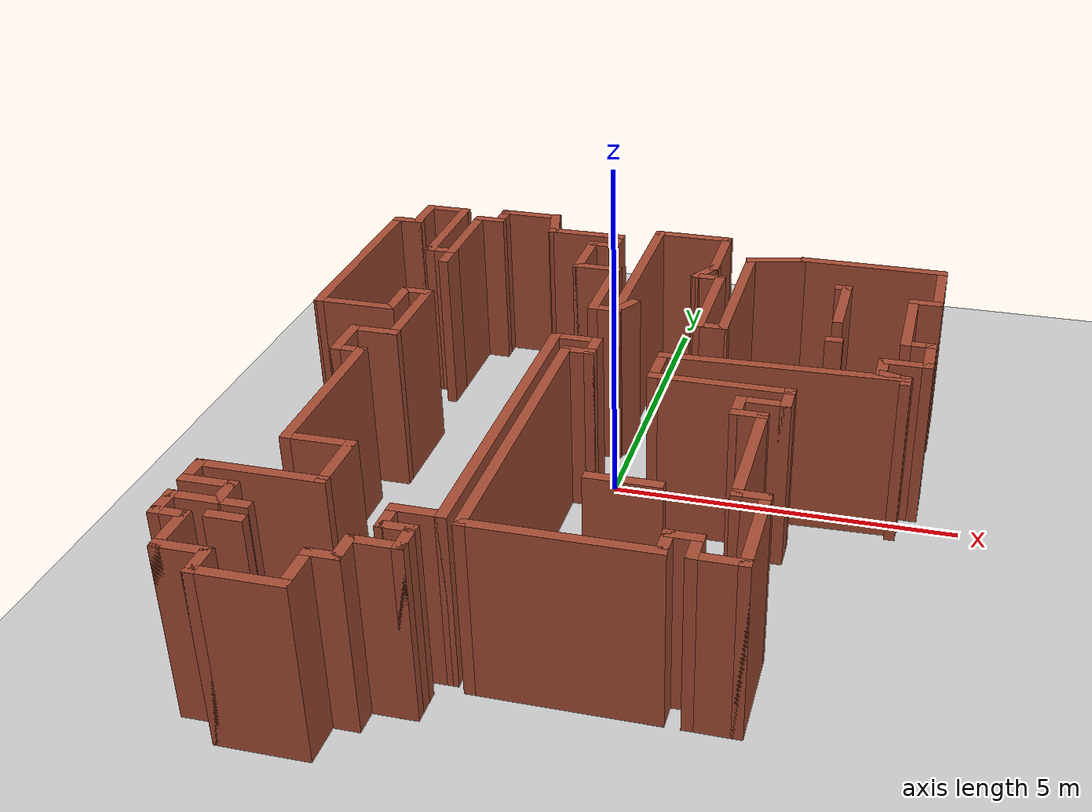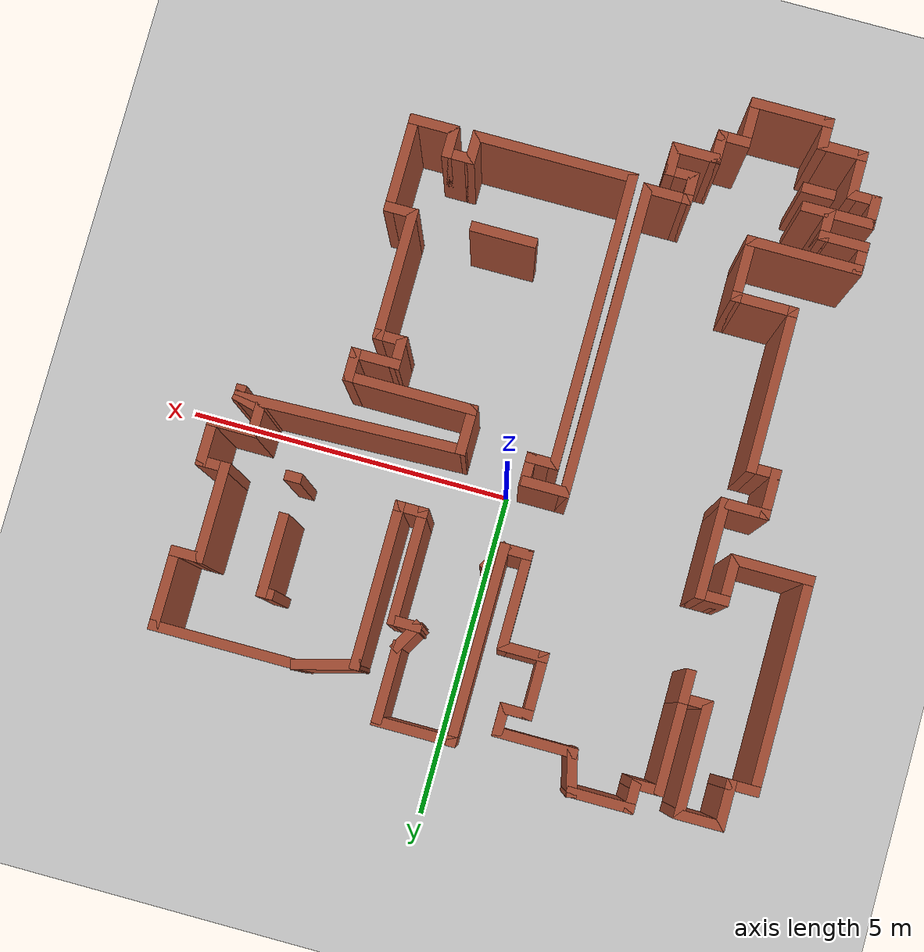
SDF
<sdf version="1.7">
 <world name="default">
  <light name="sun" type="directional">
   <pose>0 0 10 0 -0 0</pose>
   <diffuse>0.8 0.8 0.8 1</diffuse>
   <specular>0.2 0.2 0.2 1</specular>
   <attenuation>
    <range>1000</range>
    <constant>0.9</constant>
    <linear>0.01</linear>
    <quadratic>0.001</quadratic>
   </attenuation>
   <direction>-0.5 0.1 -0.9</direction>
   <spot><inner_angle>0</inner_angle><outer_angle>0</outer_angle><falloff>0</falloff></spot>
  </light>
  <model name="ground_plane">
   <static>1</static>
   <link name="link">
    <collision name="collision">
     <geometry><plane><normal>0 0 1</normal><size>100 100</size></plane></geometry>
     <surface>
      <contact><collide_bitmask>65535</collide_bitmask></contact>
      <friction><ode><mu>100</mu><mu2>50</mu2></ode></friction>
     </surface>
    </collision>
    <visual name="visual">
     <cast_shadows>0</cast_shadows>
     <geometry><plane><normal>0 0 1</normal><size>100 100</size></plane></geometry>
     <material>
      <script><uri>file://media/materials/scripts/gazebo.material</uri><name>Gazebo/Grey</name></script>
     </material>
    </visual>
   </link>
  </model>
  <gravity>0 0 -9.8</gravity>
  <magnetic_field>6e-06 2.3e-05 -4.2e-05</magnetic_field>
  <atmosphere type="adiabatic"/>
  <physics name="default_physics" default="0" type="ode">
   <max_step_size>0.001</max_step_size>
   <real_time_factor>1</real_time_factor>
   <real_time_update_rate>1000</real_time_update_rate>
  </physics>
  <scene><ambient>0.4 0.4 0.4 1</ambient><background>0.7 0.7 0.7 1</background><shadows>1</shadows></scene>
  <audio><device>default</device></audio>
  <spherical_coordinates>
   <surface_model>EARTH_WGS84</surface_model>
   <latitude_deg>0</latitude_deg>
   <longitude_deg>0</longitude_deg>
   <elevation>0</elevation>
   <heading_deg>0</heading_deg>
  </spherical_coordinates>
  <model name="map_46">
   <pose>-0.10887 -1.1447 0 0 -0 0</pose>
   <link name="Wall_0">
    <collision name="Wall_0_Collision">
     <geometry><box><size>1 0.15 2.5</size></box></geometry>
     <pose>0 0 1.25 0 -0 0</pose>
    </collision>
    <visual name="Wall_0_Visual">
     <pose>0 0 1.25 0 -0 0</pose>
     <geometry><box><size>1 0.15 2.5</size></box></geometry>
     <material>
      <script><uri>file://media/materials/scripts/gazebo.material</uri><name>Gazebo/Bricks</name></script>
      <ambient>1 1 1 1</ambient>
     </material>
     <meta><layer>0</layer></meta>
    </visual>
    <pose>-2.35596 5.16721 0 0 -0 3.14159</pose>
   </link>
   <link name="Wall_1">
    <collision name="Wall_1_Collision">
     <geometry><box><size>0.5 0.15 2.5</size></box></geometry>
     <pose>0 0 1.25 0 -0 0</pose>
    </collision>
    <visual name="Wall_1_Visual">
     <pose>0 0 1.25 0 -0 0</pose>
     <geometry><box><size>0.5 0.15 2.5</size></box></geometry>
     <material>
      <script><uri>file://media/materials/scripts/gazebo.material</uri><name>Gazebo/Bricks</name></script>
      <ambient>1 1 1 1</ambient>
     </material>
     <meta><layer>0</layer></meta>
    </visual>
    <pose>-2.78096 4.99221 0 0 -0 -1.5708</pose>
   </link>
   <link name="Wall_10">
    <collision name="Wall_10_Collision">
     <geometry><box><size>1.25 0.15 2.5</size></box></geometry>
     <pose>0 0 1.25 0 -0 0</pose>
    </collision>
    <visual name="Wall_10_Visual">
     <pose>0 0 1.25 0 -0 0</pose>
     <geometry><box><size>1.25 0.15 2.5</size></box></geometry>
     <material>
      <script><uri>file://media/materials/scripts/gazebo.material</uri><name>Gazebo/Bricks</name></script>
      <ambient>1 1 1 1</ambient>
     </material>
     <meta><layer>0</layer></meta>
    </visual>
    <pose>-3.88096 1.36721 0 0 -0 0</pose>
   </link>
   <link name="Wall_100">
    <collision name="Wall_100_Collision">
     <geometry><box><size>2.25 0.15 2.5</size></box></geometry>
     <pose>0 0 1.25 0 -0 0</pose>
    </collision>
    <visual name="Wall_100_Visual">
     <pose>0 0 1.25 0 -0 0</pose>
     <geometry><box><size>2.25 0.15 2.5</size></box></geometry>
     <material>
      <script><uri>file://media/materials/scripts/gazebo.material</uri><name>Gazebo/Bricks</name></script>
      <ambient>1 1 1 1</ambient>
     </material>
     <meta><layer>0</layer></meta>
    </visual>
    <pose>3.38096 4.45779 0 0 -0 3.14159</pose>
   </link>
   <link name="Wall_11">
    <collision name="Wall_11_Collision">
     <geometry><box><size>0.75 0.15 2.5</size></box></geometry>
     <pose>0 0 1.25 0 -0 0</pose>
    </collision>
    <visual name="Wall_11_Visual">
     <pose>0 0 1.25 0 -0 0</pose>
     <geometry><box><size>0.75 0.15 2.5</size></box></geometry>
     <material>
      <script><uri>file://media/materials/scripts/gazebo.material</uri><name>Gazebo/Bricks</name></script>
      <ambient>1 1 1 1</ambient>
     </material>
     <meta><layer>0</layer></meta>
    </visual>
    <pose>-3.33096 1.66721 0 0 -0 1.5708</pose>
   </link>
   <link name="Wall_112">
    <collision name="Wall_112_Collision">
     <geometry><box><size>1 0.15 2.5</size></box></geometry>
     <pose>0 0 1.25 0 -0 0</pose>
    </collision>
    <visual name="Wall_112_Visual">
     <pose>0 0 1.25 0 -0 0</pose>
     <geometry><box><size>1 0.15 2.5</size></box></geometry>
     <material>
      <script><uri>file://media/materials/scripts/gazebo.material</uri><name>Gazebo/Bricks</name></script>
      <ambient>1 1 1 1</ambient>
     </material>
     <meta><layer>0</layer></meta>
    </visual>
    <pose>1.92044 4.3478 0 0 -0 -2.87979</pose>
   </link>
   <link name="Wall_113">
    <collision name="Wall_113_Collision">
     <geometry><box><size>2.5 0.15 2.5</size></box></geometry>
     <pose>0 0 1.25 0 -0 0</pose>
    </collision>
    <visual name="Wall_113_Visual">
     <pose>0 0 1.25 0 -0 0</pose>
     <geometry><box><size>2.5 0.15 2.5</size></box></geometry>
     <material>
      <script><uri>file://media/materials/scripts/gazebo.material</uri><name>Gazebo/Bricks</name></script>
      <ambient>1 1 1 1</ambient>
     </material>
     <meta><layer>0</layer></meta>
    </visual>
    <pose>1.50993 3.0628 0 0 -0 -1.5708</pose>
   </link>
   <link name="Wall_114">
    <collision name="Wall_114_Collision">
     <geometry><box><size>0.5 0.15 2.5</size></box></geometry>
     <pose>0 0 1.25 0 -0 0</pose>
    </collision>
    <visual name="Wall_114_Visual">
     <pose>0 0 1.25 0 -0 0</pose>
     <geometry><box><size>0.5 0.15 2.5</size></box></geometry>
     <material>
      <script><uri>file://media/materials/scripts/gazebo.material</uri><name>Gazebo/Bricks</name></script>
      <ambient>1 1 1 1</ambient>
     </material>
     <meta><layer>0</layer></meta>
    </visual>
    <pose>1.33493 1.8878 0 0 -0 3.14159</pose>
   </link>
   <link name="Wall_115">
    <collision name="Wall_115_Collision">
     <geometry><box><size>1.75 0.15 2.5</size></box></geometry>
     <pose>0 0 1.25 0 -0 0</pose>
    </collision>
    <visual name="Wall_115_Visual">
     <pose>0 0 1.25 0 -0 0</pose>
     <geometry><box><size>1.75 0.15 2.5</size></box></geometry>
     <material>
      <script><uri>file://media/materials/scripts/gazebo.material</uri><name>Gazebo/Bricks</name></script>
      <ambient>1 1 1 1</ambient>
     </material>
     <meta><layer>0</layer></meta>
    </visual>
    <pose>1.15993 2.6878 0 0 -0 1.5708</pose>
   </link>
   <link name="Wall_119">
    <collision name="Wall_119_Collision">
     <geometry><box><size>1.25 0.15 2.5</size></box></geometry>
     <pose>0 0 1.25 0 -0 0</pose>
    </collision>
    <visual name="Wall_119_Visual">
     <pose>0 0 1.25 0 -0 0</pose>
     <geometry><box><size>1.25 0.15 2.5</size></box></geometry>
     <material>
      <script><uri>file://media/materials/scripts/gazebo.material</uri><name>Gazebo/Bricks</name></script>
      <ambient>1 1 1 1</ambient>
     </material>
     <meta><layer>0</layer></meta>
    </visual>
    <pose>1.00051 4.37587 0 0 -0 1.5708</pose>
   </link>
   <link name="Wall_12">
    <collision name="Wall_12_Collision">
     <geometry><box><size>0.5 0.15 2.5</size></box></geometry>
     <pose>0 0 1.25 0 -0 0</pose>
    </collision>
    <visual name="Wall_12_Visual">
     <pose>0 0 1.25 0 -0 0</pose>
     <geometry><box><size>0.5 0.15 2.5</size></box></geometry>
     <material>
      <script><uri>file://media/materials/scripts/gazebo.material</uri><name>Gazebo/Bricks</name></script>
      <ambient>1 1 1 1</ambient>
     </material>
     <meta><layer>0</layer></meta>
    </visual>
    <pose>-3.15596 1.96721 0 0 -0 0</pose>
   </link>
   <link name="Wall_122">
    <collision name="Wall_122_Collision">
     <geometry><box><size>1.25 0.15 2.5</size></box></geometry>
     <pose>0 0 1.25 0 -0 0</pose>
    </collision>
    <visual name="Wall_122_Visual">
     <pose>0 0 1.25 0 -0 0</pose>
     <geometry><box><size>1.25 0.15 2.5</size></box></geometry>
     <material>
      <script><uri>file://media/materials/scripts/gazebo.material</uri><name>Gazebo/Bricks</name></script>
      <ambient>1 1 1 1</ambient>
     </material>
     <meta><layer>0</layer></meta>
    </visual>
    <pose>0.450513 4.92587 0 0 -0 3.14159</pose>
   </link>
   <link name="Wall_123">
    <collision name="Wall_123_Collision">
     <geometry><box><size>3 0.15 2.5</size></box></geometry>
     <pose>0 0 1.25 0 -0 0</pose>
    </collision>
    <visual name="Wall_123_Visual">
     <pose>0 0 1.25 0 -0 0</pose>
     <geometry><box><size>3 0.15 2.5</size></box></geometry>
     <material>
      <script><uri>file://media/materials/scripts/gazebo.material</uri><name>Gazebo/Bricks</name></script>
      <ambient>1 1 1 1</ambient>
     </material>
     <meta><layer>0</layer></meta>
    </visual>
    <pose>-0.099487 3.50087 0 0 -0 -1.5708</pose>
   </link>
   <link name="Wall_124">
    <collision name="Wall_124_Collision">
     <geometry><box><size>0.5 0.15 2.5</size></box></geometry>
     <pose>0 0 1.25 0 -0 0</pose>
    </collision>
    <visual name="Wall_124_Visual">
     <pose>0 0 1.25 0 -0 0</pose>
     <geometry><box><size>0.5 0.15 2.5</size></box></geometry>
     <material>
      <script><uri>file://media/materials/scripts/gazebo.material</uri><name>Gazebo/Bricks</name></script>
      <ambient>1 1 1 1</ambient>
     </material>
     <meta><layer>0</layer></meta>
    </visual>
    <pose>-0.274487 2.07587 0 0 -0 3.14159</pose>
   </link>
   <link name="Wall_125">
    <collision name="Wall_125_Collision">
     <geometry><box><size>1.5 0.15 2.5</size></box></geometry>
     <pose>0 0 1.25 0 -0 0</pose>
    </collision>
    <visual name="Wall_125_Visual">
     <pose>0 0 1.25 0 -0 0</pose>
     <geometry><box><size>1.5 0.15 2.5</size></box></geometry>
     <material>
      <script><uri>file://media/materials/scripts/gazebo.material</uri><name>Gazebo/Bricks</name></script>
      <ambient>1 1 1 1</ambient>
     </material>
     <meta><layer>0</layer></meta>
    </visual>
    <pose>-0.449487 2.75087 0 0 -0 1.5708</pose>
   </link>
   <link name="Wall_126">
    <collision name="Wall_126_Collision">
     <geometry><box><size>0.75 0.15 2.5</size></box></geometry>
     <pose>0 0 1.25 0 -0 0</pose>
    </collision>
    <visual name="Wall_126_Visual">
     <pose>0 0 1.25 0 -0 0</pose>
     <geometry><box><size>0.75 0.15 2.5</size></box></geometry>
     <material>
      <script><uri>file://media/materials/scripts/gazebo.material</uri><name>Gazebo/Bricks</name></script>
      <ambient>1 1 1 1</ambient>
     </material>
     <meta><layer>0</layer></meta>
    </visual>
    <pose>-0.749487 3.42587 0 0 -0 3.14159</pose>
   </link>
   <link name="Wall_127">
    <collision name="Wall_127_Collision">
     <geometry><box><size>1 0.15 2.5</size></box></geometry>
     <pose>0 0 1.25 0 -0 0</pose>
    </collision>
    <visual name="Wall_127_Visual">
     <pose>0 0 1.25 0 -0 0</pose>
     <geometry><box><size>1 0.15 2.5</size></box></geometry>
     <material>
      <script><uri>file://media/materials/scripts/gazebo.material</uri><name>Gazebo/Bricks</name></script>
      <ambient>1 1 1 1</ambient>
     </material>
     <meta><layer>0</layer></meta>
    </visual>
    <pose>-1.04949 3.85087 0 0 -0 1.5708</pose>
   </link>
   <link name="Wall_128">
    <collision name="Wall_128_Collision">
     <geometry><box><size>0.5 0.15 2.5</size></box></geometry>
     <pose>0 0 1.25 0 -0 0</pose>
    </collision>
    <visual name="Wall_128_Visual">
     <pose>0 0 1.25 0 -0 0</pose>
     <geometry><box><size>0.5 0.15 2.5</size></box></geometry>
     <material>
      <script><uri>file://media/materials/scripts/gazebo.material</uri><name>Gazebo/Bricks</name></script>
      <ambient>1 1 1 1</ambient>
     </material>
     <meta><layer>0</layer></meta>
    </visual>
    <pose>-0.874487 4.27587 0 0 -0 0</pose>
   </link>
   <link name="Wall_129">
    <collision name="Wall_129_Collision">
     <geometry><box><size>0.5 0.15 2.5</size></box></geometry>
     <pose>0 0 1.25 0 -0 0</pose>
    </collision>
    <visual name="Wall_129_Visual">
     <pose>0 0 1.25 0 -0 0</pose>
     <geometry><box><size>0.5 0.15 2.5</size></box></geometry>
     <material>
      <script><uri>file://media/materials/scripts/gazebo.material</uri><name>Gazebo/Bricks</name></script>
      <ambient>1 1 1 1</ambient>
     </material>
     <meta><layer>0</layer></meta>
    </visual>
    <pose>-0.699487 4.45087 0 0 -0 1.5708</pose>
   </link>
   <link name="Wall_13">
    <collision name="Wall_13_Collision">
     <geometry><box><size>1.5 0.15 2.5</size></box></geometry>
     <pose>0 0 1.25 0 -0 0</pose>
    </collision>
    <visual name="Wall_13_Visual">
     <pose>0 0 1.25 0 -0 0</pose>
     <geometry><box><size>1.5 0.15 2.5</size></box></geometry>
     <material>
      <script><uri>file://media/materials/scripts/gazebo.material</uri><name>Gazebo/Bricks</name></script>
      <ambient>1 1 1 1</ambient>
     </material>
     <meta><layer>0</layer></meta>
    </visual>
    <pose>-2.98096 1.29221 0 0 -0 -1.5708</pose>
   </link>
   <link name="Wall_130">
    <collision name="Wall_130_Collision">
     <geometry><box><size>1.25 0.15 2.5</size></box></geometry>
     <pose>0 0 1.25 0 -0 0</pose>
    </collision>
    <visual name="Wall_130_Visual">
     <pose>0 0 1.25 0 -0 0</pose>
     <geometry><box><size>1.25 0.15 2.5</size></box></geometry>
     <material>
      <script><uri>file://media/materials/scripts/gazebo.material</uri><name>Gazebo/Bricks</name></script>
      <ambient>1 1 1 1</ambient>
     </material>
     <meta><layer>0</layer></meta>
    </visual>
    <pose>-1.24949 4.62587 0 0 -0 3.14159</pose>
   </link>
   <link name="Wall_131">
    <collision name="Wall_131_Collision">
     <geometry><box><size>0.707073 0.15 2.5</size></box></geometry>
     <pose>0 0 1.25 0 -0 0</pose>
    </collision>
    <visual name="Wall_131_Visual">
     <pose>0 0 1.25 0 -0 0</pose>
     <geometry><box><size>0.707073 0.15 2.5</size></box></geometry>
     <material>
      <script><uri>file://media/materials/scripts/gazebo.material</uri><name>Gazebo/Bricks</name></script>
      <ambient>1 1 1 1</ambient>
     </material>
     <meta><layer>0</layer></meta>
    </visual>
    <pose>-1.86522 4.89654 0 0 -0 1.80906</pose>
   </link>
   <link name="Wall_133">
    <collision name="Wall_133_Collision">
     <geometry><box><size>3.45152 0.15 2.5</size></box></geometry>
     <pose>0 0 1.25 0 -0 0</pose>
    </collision>
    <visual name="Wall_133_Visual">
     <pose>0 0 1.25 0 -0 0</pose>
     <geometry><box><size>3.45152 0.15 2.5</size></box></geometry>
     <material>
      <script><uri>file://media/materials/scripts/gazebo.material</uri><name>Gazebo/Bricks</name></script>
      <ambient>1 1 1 1</ambient>
     </material>
     <meta><layer>0</layer></meta>
    </visual>
    <pose>2.51904 0.917209 0 0 -0 0.030294</pose>
   </link>
   <link name="Wall_135">
    <collision name="Wall_135_Collision">
     <geometry><box><size>0.5 0.15 2.5</size></box></geometry>
     <pose>0 0 1.25 0 -0 0</pose>
    </collision>
    <visual name="Wall_135_Visual">
     <pose>0 0 1.25 0 -0 0</pose>
     <geometry><box><size>0.5 0.15 2.5</size></box></geometry>
     <material>
      <script><uri>file://media/materials/scripts/gazebo.material</uri><name>Gazebo/Bricks</name></script>
      <ambient>1 1 1 1</ambient>
     </material>
     <meta><layer>0</layer></meta>
    </visual>
    <pose>-0.011987 2.22743 0 0 -0 1.0472</pose>
   </link>
   <link name="Wall_137">
    <collision name="Wall_137_Collision">
     <geometry><box><size>0.25 0.15 2.5</size></box></geometry>
     <pose>0 0 1.25 0 -0 0</pose>
    </collision>
    <visual name="Wall_137_Visual">
     <pose>0 0 1.25 0 -0 0</pose>
     <geometry><box><size>0.25 0.15 2.5</size></box></geometry>
     <material>
      <script><uri>file://media/materials/scripts/gazebo.material</uri><name>Gazebo/Bricks</name></script>
      <ambient>1 1 1 1</ambient>
     </material>
     <meta><layer>0</layer></meta>
    </visual>
    <pose>3.02273 3.59433 0 0 -0 0</pose>
   </link>
   <link name="Wall_138">
    <collision name="Wall_138_Collision">
     <geometry><box><size>1.25 0.15 2.5</size></box></geometry>
     <pose>0 0 1.25 0 -0 0</pose>
    </collision>
    <visual name="Wall_138_Visual">
     <pose>0 0 1.25 0 -0 0</pose>
     <geometry><box><size>1.25 0.15 2.5</size></box></geometry>
     <material>
      <script><uri>file://media/materials/scripts/gazebo.material</uri><name>Gazebo/Bricks</name></script>
      <ambient>1 1 1 1</ambient>
     </material>
     <meta><layer>0</layer></meta>
    </visual>
    <pose>3.07273 3.04433 0 0 -0 -1.5708</pose>
   </link>
   <link name="Wall_14">
    <collision name="Wall_14_Collision">
     <geometry><box><size>0.75 0.15 2.5</size></box></geometry>
     <pose>0 0 1.25 0 -0 0</pose>
    </collision>
    <visual name="Wall_14_Visual">
     <pose>0 0 1.25 0 -0 0</pose>
     <geometry><box><size>0.75 0.15 2.5</size></box></geometry>
     <material>
      <script><uri>file://media/materials/scripts/gazebo.material</uri><name>Gazebo/Bricks</name></script>
      <ambient>1 1 1 1</ambient>
     </material>
     <meta><layer>0</layer></meta>
    </visual>
    <pose>-3.28096 0.617209 0 0 -0 3.14159</pose>
   </link>
   <link name="Wall_140">
    <collision name="Wall_140_Collision">
     <geometry><box><size>0.25 0.15 2.5</size></box></geometry>
     <pose>0 0 1.25 0 -0 0</pose>
    </collision>
    <visual name="Wall_140_Visual">
     <pose>0 0 1.25 0 -0 0</pose>
     <geometry><box><size>0.25 0.15 2.5</size></box></geometry>
     <material>
      <script><uri>file://media/materials/scripts/gazebo.material</uri><name>Gazebo/Bricks</name></script>
      <ambient>1 1 1 1</ambient>
     </material>
     <meta><layer>0</layer></meta>
    </visual>
    <pose>3.09212 1.88266 0 0 -0 0</pose>
   </link>
   <link name="Wall_144">
    <collision name="Wall_144_Collision">
     <geometry><box><size>0.5 0.15 2.5</size></box></geometry>
     <pose>0 0 1.25 0 -0 0</pose>
    </collision>
    <visual name="Wall_144_Visual">
     <pose>0 0 1.25 0 -0 0</pose>
     <geometry><box><size>0.5 0.15 2.5</size></box></geometry>
     <material>
      <script><uri>file://media/materials/scripts/gazebo.material</uri><name>Gazebo/Bricks</name></script>
      <ambient>1 1 1 1</ambient>
     </material>
     <meta><layer>0</layer></meta>
    </visual>
    <pose>-3.13096 3.29221 0 0 -0 -1.5708</pose>
   </link>
   <link name="Wall_146">
    <collision name="Wall_146_Collision">
     <geometry><box><size>1 0.15 2.5</size></box></geometry>
     <pose>0 0 1.25 0 -0 0</pose>
    </collision>
    <visual name="Wall_146_Visual">
     <pose>0 0 1.25 0 -0 0</pose>
     <geometry><box><size>1 0.15 2.5</size></box></geometry>
     <material>
      <script><uri>file://media/materials/scripts/gazebo.material</uri><name>Gazebo/Bricks</name></script>
      <ambient>1 1 1 1</ambient>
     </material>
     <meta><layer>0</layer></meta>
    </visual>
    <pose>1.1078 -2.32711 0 0 -0 0</pose>
   </link>
   <link name="Wall_148">
    <collision name="Wall_148_Collision">
     <geometry><box><size>0.5 0.15 2.5</size></box></geometry>
     <pose>0 0 1.25 0 -0 0</pose>
    </collision>
    <visual name="Wall_148_Visual">
     <pose>0 0 1.25 0 -0 0</pose>
     <geometry><box><size>0.5 0.15 2.5</size></box></geometry>
     <material>
      <script><uri>file://media/materials/scripts/gazebo.material</uri><name>Gazebo/Bricks</name></script>
      <ambient>1 1 1 1</ambient>
     </material>
     <meta><layer>0</layer></meta>
    </visual>
    <pose>-3.20596 -3.88279 0 0 -0 0</pose>
   </link>
   <link name="Wall_15">
    <collision name="Wall_15_Collision">
     <geometry><box><size>0.75 0.15 2.5</size></box></geometry>
     <pose>0 0 1.25 0 -0 0</pose>
    </collision>
    <visual name="Wall_15_Visual">
     <pose>0 0 1.25 0 -0 0</pose>
     <geometry><box><size>0.75 0.15 2.5</size></box></geometry>
     <material>
      <script><uri>file://media/materials/scripts/gazebo.material</uri><name>Gazebo/Bricks</name></script>
      <ambient>1 1 1 1</ambient>
     </material>
     <meta><layer>0</layer></meta>
    </visual>
    <pose>-3.58096 0.317209 0 0 -0 -1.5708</pose>
   </link>
   <link name="Wall_150">
    <collision name="Wall_150_Collision">
     <geometry><box><size>0.5 0.15 2.5</size></box></geometry>
     <pose>0 0 1.25 0 -0 0</pose>
    </collision>
    <visual name="Wall_150_Visual">
     <pose>0 0 1.25 0 -0 0</pose>
     <geometry><box><size>0.5 0.15 2.5</size></box></geometry>
     <material>
      <script><uri>file://media/materials/scripts/gazebo.material</uri><name>Gazebo/Bricks</name></script>
      <ambient>1 1 1 1</ambient>
     </material>
     <meta><layer>0</layer></meta>
    </visual>
    <pose>-3.1438 -4.15443 0 0 -0 0</pose>
   </link>
   <link name="Wall_153">
    <collision name="Wall_153_Collision">
     <geometry><box><size>0.5 0.15 2.5</size></box></geometry>
     <pose>0 0 1.25 0 -0 0</pose>
    </collision>
    <visual name="Wall_153_Visual">
     <pose>0 0 1.25 0 -0 0</pose>
     <geometry><box><size>0.5 0.15 2.5</size></box></geometry>
     <material>
      <script><uri>file://media/materials/scripts/gazebo.material</uri><name>Gazebo/Bricks</name></script>
      <ambient>1 1 1 1</ambient>
     </material>
     <meta><layer>0</layer></meta>
    </visual>
    <pose>0.984926 3.4878 0 0 -0 3.14159</pose>
   </link>
   <link name="Wall_154">
    <collision name="Wall_154_Collision">
     <geometry><box><size>0.538094 0.15 2.5</size></box></geometry>
     <pose>0 0 1.25 0 -0 0</pose>
    </collision>
    <visual name="Wall_154_Visual">
     <pose>0 0 1.25 0 -0 0</pose>
     <geometry><box><size>0.538094 0.15 2.5</size></box></geometry>
     <material>
      <script><uri>file://media/materials/scripts/gazebo.material</uri><name>Gazebo/Bricks</name></script>
      <ambient>1 1 1 1</ambient>
     </material>
     <meta><layer>0</layer></meta>
    </visual>
    <pose>0.905219 3.65684 0 0 -0 1.05746</pose>
   </link>
   <link name="Wall_16">
    <collision name="Wall_16_Collision">
     <geometry><box><size>0.5 0.15 2.5</size></box></geometry>
     <pose>0 0 1.25 0 -0 0</pose>
    </collision>
    <visual name="Wall_16_Visual">
     <pose>0 0 1.25 0 -0 0</pose>
     <geometry><box><size>0.5 0.15 2.5</size></box></geometry>
     <material>
      <script><uri>file://media/materials/scripts/gazebo.material</uri><name>Gazebo/Bricks</name></script>
      <ambient>1 1 1 1</ambient>
     </material>
     <meta><layer>0</layer></meta>
    </visual>
    <pose>-3.40596 0.017209 0 0 -0 0</pose>
   </link>
   <link name="Wall_17">
    <collision name="Wall_17_Collision">
     <geometry><box><size>2.5 0.15 2.5</size></box></geometry>
     <pose>0 0 1.25 0 -0 0</pose>
    </collision>
    <visual name="Wall_17_Visual">
     <pose>0 0 1.25 0 -0 0</pose>
     <geometry><box><size>2.5 0.15 2.5</size></box></geometry>
     <material>
      <script><uri>file://media/materials/scripts/gazebo.material</uri><name>Gazebo/Bricks</name></script>
      <ambient>1 1 1 1</ambient>
     </material>
     <meta><layer>0</layer></meta>
    </visual>
    <pose>-3.23096 -1.15779 0 0 -0 -1.5708</pose>
   </link>
   <link name="Wall_18">
    <collision name="Wall_18_Collision">
     <geometry><box><size>1 0.15 2.5</size></box></geometry>
     <pose>0 0 1.25 0 -0 0</pose>
    </collision>
    <visual name="Wall_18_Visual">
     <pose>0 0 1.25 0 -0 0</pose>
     <geometry><box><size>1 0.15 2.5</size></box></geometry>
     <material>
      <script><uri>file://media/materials/scripts/gazebo.material</uri><name>Gazebo/Bricks</name></script>
      <ambient>1 1 1 1</ambient>
     </material>
     <meta><layer>0</layer></meta>
    </visual>
    <pose>-2.80596 -2.33279 0 0 -0 0</pose>
   </link>
   <link name="Wall_19">
    <collision name="Wall_19_Collision">
     <geometry><box><size>1 0.15 2.5</size></box></geometry>
     <pose>0 0 1.25 0 -0 0</pose>
    </collision>
    <visual name="Wall_19_Visual">
     <pose>0 0 1.25 0 -0 0</pose>
     <geometry><box><size>1 0.15 2.5</size></box></geometry>
     <material>
      <script><uri>file://media/materials/scripts/gazebo.material</uri><name>Gazebo/Bricks</name></script>
      <ambient>1 1 1 1</ambient>
     </material>
     <meta><layer>0</layer></meta>
    </visual>
    <pose>-2.38096 -2.75779 0 0 -0 -1.5708</pose>
   </link>
   <link name="Wall_2">
    <collision name="Wall_2_Collision">
     <geometry><box><size>0.5 0.15 2.5</size></box></geometry>
     <pose>0 0 1.25 0 -0 0</pose>
    </collision>
    <visual name="Wall_2_Visual">
     <pose>0 0 1.25 0 -0 0</pose>
     <geometry><box><size>0.5 0.15 2.5</size></box></geometry>
     <material>
      <script><uri>file://media/materials/scripts/gazebo.material</uri><name>Gazebo/Bricks</name></script>
      <ambient>1 1 1 1</ambient>
     </material>
     <meta><layer>0</layer></meta>
    </visual>
    <pose>-2.95596 4.81721 0 0 -0 3.14159</pose>
   </link>
   <link name="Wall_20">
    <collision name="Wall_20_Collision">
     <geometry><box><size>1.75 0.15 2.5</size></box></geometry>
     <pose>0 0 1.25 0 -0 0</pose>
    </collision>
    <visual name="Wall_20_Visual">
     <pose>0 0 1.25 0 -0 0</pose>
     <geometry><box><size>1.75 0.15 2.5</size></box></geometry>
     <material>
      <script><uri>file://media/materials/scripts/gazebo.material</uri><name>Gazebo/Bricks</name></script>
      <ambient>1 1 1 1</ambient>
     </material>
     <meta><layer>0</layer></meta>
    </visual>
    <pose>-3.18096 -3.18279 0 0 -0 3.14159</pose>
   </link>
   <link name="Wall_21">
    <collision name="Wall_21_Collision">
     <geometry><box><size>0.5 0.15 2.5</size></box></geometry>
     <pose>0 0 1.25 0 -0 0</pose>
    </collision>
    <visual name="Wall_21_Visual">
     <pose>0 0 1.25 0 -0 0</pose>
     <geometry><box><size>0.5 0.15 2.5</size></box></geometry>
     <material>
      <script><uri>file://media/materials/scripts/gazebo.material</uri><name>Gazebo/Bricks</name></script>
      <ambient>1 1 1 1</ambient>
     </material>
     <meta><layer>0</layer></meta>
    </visual>
    <pose>-3.98096 -3.35779 0 0 -0 -1.5708</pose>
   </link>
   <link name="Wall_22">
    <collision name="Wall_22_Collision">
     <geometry><box><size>0.75 0.15 2.5</size></box></geometry>
     <pose>0 0 1.25 0 -0 0</pose>
    </collision>
    <visual name="Wall_22_Visual">
     <pose>0 0 1.25 0 -0 0</pose>
     <geometry><box><size>0.75 0.15 2.5</size></box></geometry>
     <material>
      <script><uri>file://media/materials/scripts/gazebo.material</uri><name>Gazebo/Bricks</name></script>
      <ambient>1 1 1 1</ambient>
     </material>
     <meta><layer>0</layer></meta>
    </visual>
    <pose>-3.68096 -3.53279 0 0 -0 0</pose>
   </link>
   <link name="Wall_23">
    <collision name="Wall_23_Collision">
     <geometry><box><size>0.5 0.15 2.5</size></box></geometry>
     <pose>0 0 1.25 0 -0 0</pose>
    </collision>
    <visual name="Wall_23_Visual">
     <pose>0 0 1.25 0 -0 0</pose>
     <geometry><box><size>0.5 0.15 2.5</size></box></geometry>
     <material>
      <script><uri>file://media/materials/scripts/gazebo.material</uri><name>Gazebo/Bricks</name></script>
      <ambient>1 1 1 1</ambient>
     </material>
     <meta><layer>0</layer></meta>
    </visual>
    <pose>-3.38096 -3.70779 0 0 -0 -1.5708</pose>
   </link>
   <link name="Wall_24">
    <collision name="Wall_24_Collision">
     <geometry><box><size>0.75 0.15 2.5</size></box></geometry>
     <pose>0 0 1.25 0 -0 0</pose>
    </collision>
    <visual name="Wall_24_Visual">
     <pose>0 0 1.25 0 -0 0</pose>
     <geometry><box><size>0.75 0.15 2.5</size></box></geometry>
     <material>
      <script><uri>file://media/materials/scripts/gazebo.material</uri><name>Gazebo/Bricks</name></script>
      <ambient>1 1 1 1</ambient>
     </material>
     <meta><layer>0</layer></meta>
    </visual>
    <pose>-3.68096 -3.88279 0 0 -0 3.14159</pose>
   </link>
   <link name="Wall_28">
    <collision name="Wall_28_Collision">
     <geometry><box><size>0.5 0.15 2.5</size></box></geometry>
     <pose>0 0 1.25 0 -0 0</pose>
    </collision>
    <visual name="Wall_28_Visual">
     <pose>0 0 1.25 0 -0 0</pose>
     <geometry><box><size>0.5 0.15 2.5</size></box></geometry>
     <material>
      <script><uri>file://media/materials/scripts/gazebo.material</uri><name>Gazebo/Bricks</name></script>
      <ambient>1 1 1 1</ambient>
     </material>
     <meta><layer>0</layer></meta>
    </visual>
    <pose>-3.98096 -4.05779 0 0 -0 -1.5708</pose>
   </link>
   <link name="Wall_29">
    <collision name="Wall_29_Collision">
     <geometry><box><size>0.5 0.15 2.5</size></box></geometry>
     <pose>0 0 1.25 0 -0 0</pose>
    </collision>
    <visual name="Wall_29_Visual">
     <pose>0 0 1.25 0 -0 0</pose>
     <geometry><box><size>0.5 0.15 2.5</size></box></geometry>
     <material>
      <script><uri>file://media/materials/scripts/gazebo.material</uri><name>Gazebo/Bricks</name></script>
      <ambient>1 1 1 1</ambient>
     </material>
     <meta><layer>0</layer></meta>
    </visual>
    <pose>-3.80596 -4.23279 0 0 -0 0</pose>
   </link>
   <link name="Wall_3">
    <collision name="Wall_3_Collision">
     <geometry><box><size>1.5 0.15 2.5</size></box></geometry>
     <pose>0 0 1.25 0 -0 0</pose>
    </collision>
    <visual name="Wall_3_Visual">
     <pose>0 0 1.25 0 -0 0</pose>
     <geometry><box><size>1.5 0.15 2.5</size></box></geometry>
     <material>
      <script><uri>file://media/materials/scripts/gazebo.material</uri><name>Gazebo/Bricks</name></script>
      <ambient>1 1 1 1</ambient>
     </material>
     <meta><layer>0</layer></meta>
    </visual>
    <pose>-3.13096 4.14221 0 0 -0 -1.5708</pose>
   </link>
   <link name="Wall_30">
    <collision name="Wall_30_Collision">
     <geometry><box><size>0.75 0.15 2.5</size></box></geometry>
     <pose>0 0 1.25 0 -0 0</pose>
    </collision>
    <visual name="Wall_30_Visual">
     <pose>0 0 1.25 0 -0 0</pose>
     <geometry><box><size>0.75 0.15 2.5</size></box></geometry>
     <material>
      <script><uri>file://media/materials/scripts/gazebo.material</uri><name>Gazebo/Bricks</name></script>
      <ambient>1 1 1 1</ambient>
     </material>
     <meta><layer>0</layer></meta>
    </visual>
    <pose>-3.63096 -4.53279 0 0 -0 -1.5708</pose>
   </link>
   <link name="Wall_31">
    <collision name="Wall_31_Collision">
     <geometry><box><size>0.75 0.15 2.5</size></box></geometry>
     <pose>0 0 1.25 0 -0 0</pose>
    </collision>
    <visual name="Wall_31_Visual">
     <pose>0 0 1.25 0 -0 0</pose>
     <geometry><box><size>0.75 0.15 2.5</size></box></geometry>
     <material>
      <script><uri>file://media/materials/scripts/gazebo.material</uri><name>Gazebo/Bricks</name></script>
      <ambient>1 1 1 1</ambient>
     </material>
     <meta><layer>0</layer></meta>
    </visual>
    <pose>-3.33096 -4.83279 0 0 -0 0</pose>
   </link>
   <link name="Wall_32">
    <collision name="Wall_32_Collision">
     <geometry><box><size>0.5 0.15 2.5</size></box></geometry>
     <pose>0 0 1.25 0 -0 0</pose>
    </collision>
    <visual name="Wall_32_Visual">
     <pose>0 0 1.25 0 -0 0</pose>
     <geometry><box><size>0.5 0.15 2.5</size></box></geometry>
     <material>
      <script><uri>file://media/materials/scripts/gazebo.material</uri><name>Gazebo/Bricks</name></script>
      <ambient>1 1 1 1</ambient>
     </material>
     <meta><layer>0</layer></meta>
    </visual>
    <pose>-3.03096 -5.00779 0 0 -0 -1.5708</pose>
   </link>
   <link name="Wall_37">
    <collision name="Wall_37_Collision">
     <geometry><box><size>1.25 0.15 2.5</size></box></geometry>
     <pose>0 0 1.25 0 -0 0</pose>
    </collision>
    <visual name="Wall_37_Visual">
     <pose>0 0 1.25 0 -0 0</pose>
     <geometry><box><size>1.25 0.15 2.5</size></box></geometry>
     <material>
      <script><uri>file://media/materials/scripts/gazebo.material</uri><name>Gazebo/Bricks</name></script>
      <ambient>1 1 1 1</ambient>
     </material>
     <meta><layer>0</layer></meta>
    </visual>
    <pose>-2.48096 -5.18279 0 0 -0 0</pose>
   </link>
   <link name="Wall_4">
    <collision name="Wall_4_Collision">
     <geometry><box><size>0.5 0.15 2.5</size></box></geometry>
     <pose>0 0 1.25 0 -0 0</pose>
    </collision>
    <visual name="Wall_4_Visual">
     <pose>0 0 1.25 0 -0 0</pose>
     <geometry><box><size>0.5 0.15 2.5</size></box></geometry>
     <material>
      <script><uri>file://media/materials/scripts/gazebo.material</uri><name>Gazebo/Bricks</name></script>
      <ambient>1 1 1 1</ambient>
     </material>
     <meta><layer>0</layer></meta>
    </visual>
    <pose>-3.30596 3.46721 0 0 -0 3.14159</pose>
   </link>
   <link name="Wall_40">
    <collision name="Wall_40_Collision">
     <geometry><box><size>0.75 0.15 2.5</size></box></geometry>
     <pose>0 0 1.25 0 -0 0</pose>
    </collision>
    <visual name="Wall_40_Visual">
     <pose>0 0 1.25 0 -0 0</pose>
     <geometry><box><size>0.75 0.15 2.5</size></box></geometry>
     <material>
      <script><uri>file://media/materials/scripts/gazebo.material</uri><name>Gazebo/Bricks</name></script>
      <ambient>1 1 1 1</ambient>
     </material>
     <meta><layer>0</layer></meta>
    </visual>
    <pose>-1.93096 -4.88279 0 0 -0 1.5708</pose>
   </link>
   <link name="Wall_41">
    <collision name="Wall_41_Collision">
     <geometry><box><size>0.5 0.15 2.5</size></box></geometry>
     <pose>0 0 1.25 0 -0 0</pose>
    </collision>
    <visual name="Wall_41_Visual">
     <pose>0 0 1.25 0 -0 0</pose>
     <geometry><box><size>0.5 0.15 2.5</size></box></geometry>
     <material>
      <script><uri>file://media/materials/scripts/gazebo.material</uri><name>Gazebo/Bricks</name></script>
      <ambient>1 1 1 1</ambient>
     </material>
     <meta><layer>0</layer></meta>
    </visual>
    <pose>-1.75596 -4.58279 0 0 -0 0</pose>
   </link>
   <link name="Wall_42">
    <collision name="Wall_42_Collision">
     <geometry><box><size>0.5 0.15 2.5</size></box></geometry>
     <pose>0 0 1.25 0 -0 0</pose>
    </collision>
    <visual name="Wall_42_Visual">
     <pose>0 0 1.25 0 -0 0</pose>
     <geometry><box><size>0.5 0.15 2.5</size></box></geometry>
     <material>
      <script><uri>file://media/materials/scripts/gazebo.material</uri><name>Gazebo/Bricks</name></script>
      <ambient>1 1 1 1</ambient>
     </material>
     <meta><layer>0</layer></meta>
    </visual>
    <pose>-1.58096 -4.40779 0 0 -0 1.5708</pose>
   </link>
   <link name="Wall_45">
    <collision name="Wall_45_Collision">
     <geometry><box><size>0.75 0.15 2.5</size></box></geometry>
     <pose>0 0 1.25 0 -0 0</pose>
    </collision>
    <visual name="Wall_45_Visual">
     <pose>0 0 1.25 0 -0 0</pose>
     <geometry><box><size>0.75 0.15 2.5</size></box></geometry>
     <material>
      <script><uri>file://media/materials/scripts/gazebo.material</uri><name>Gazebo/Bricks</name></script>
      <ambient>1 1 1 1</ambient>
     </material>
     <meta><layer>0</layer></meta>
    </visual>
    <pose>-1.28096 -4.23279 0 0 -0 0</pose>
   </link>
   <link name="Wall_46">
    <collision name="Wall_46_Collision">
     <geometry><box><size>0.5 0.15 2.5</size></box></geometry>
     <pose>0 0 1.25 0 -0 0</pose>
    </collision>
    <visual name="Wall_46_Visual">
     <pose>0 0 1.25 0 -0 0</pose>
     <geometry><box><size>0.5 0.15 2.5</size></box></geometry>
     <material>
      <script><uri>file://media/materials/scripts/gazebo.material</uri><name>Gazebo/Bricks</name></script>
      <ambient>1 1 1 1</ambient>
     </material>
     <meta><layer>0</layer></meta>
    </visual>
    <pose>-0.980963 -4.05779 0 0 -0 1.5708</pose>
   </link>
   <link name="Wall_47">
    <collision name="Wall_47_Collision">
     <geometry><box><size>0.5 0.15 2.5</size></box></geometry>
     <pose>0 0 1.25 0 -0 0</pose>
    </collision>
    <visual name="Wall_47_Visual">
     <pose>0 0 1.25 0 -0 0</pose>
     <geometry><box><size>0.5 0.15 2.5</size></box></geometry>
     <material>
      <script><uri>file://media/materials/scripts/gazebo.material</uri><name>Gazebo/Bricks</name></script>
      <ambient>1 1 1 1</ambient>
     </material>
     <meta><layer>0</layer></meta>
    </visual>
    <pose>-1.15596 -3.88279 0 0 -0 3.14159</pose>
   </link>
   <link name="Wall_48">
    <collision name="Wall_48_Collision">
     <geometry><box><size>0.5 0.15 2.5</size></box></geometry>
     <pose>0 0 1.25 0 -0 0</pose>
    </collision>
    <visual name="Wall_48_Visual">
     <pose>0 0 1.25 0 -0 0</pose>
     <geometry><box><size>0.5 0.15 2.5</size></box></geometry>
     <material>
      <script><uri>file://media/materials/scripts/gazebo.material</uri><name>Gazebo/Bricks</name></script>
      <ambient>1 1 1 1</ambient>
     </material>
     <meta><layer>0</layer></meta>
    </visual>
    <pose>-1.33096 -3.70779 0 0 -0 1.5708</pose>
   </link>
   <link name="Wall_5">
    <collision name="Wall_5_Collision">
     <geometry><box><size>1.75 0.15 2.5</size></box></geometry>
     <pose>0 0 1.25 0 -0 0</pose>
    </collision>
    <visual name="Wall_5_Visual">
     <pose>0 0 1.25 0 -0 0</pose>
     <geometry><box><size>1.75 0.15 2.5</size></box></geometry>
     <material>
      <script><uri>file://media/materials/scripts/gazebo.material</uri><name>Gazebo/Bricks</name></script>
      <ambient>1 1 1 1</ambient>
     </material>
     <meta><layer>0</layer></meta>
    </visual>
    <pose>-3.48096 4.26721 0 0 -0 1.5708</pose>
   </link>
   <link name="Wall_51">
    <collision name="Wall_51_Collision">
     <geometry><box><size>0.75 0.15 2.5</size></box></geometry>
     <pose>0 0 1.25 0 -0 0</pose>
    </collision>
    <visual name="Wall_51_Visual">
     <pose>0 0 1.25 0 -0 0</pose>
     <geometry><box><size>0.75 0.15 2.5</size></box></geometry>
     <material>
      <script><uri>file://media/materials/scripts/gazebo.material</uri><name>Gazebo/Bricks</name></script>
      <ambient>1 1 1 1</ambient>
     </material>
     <meta><layer>0</layer></meta>
    </visual>
    <pose>-1.03096 -3.53279 0 0 -0 0</pose>
   </link>
   <link name="Wall_52">
    <collision name="Wall_52_Collision">
     <geometry><box><size>4.75 0.15 2.5</size></box></geometry>
     <pose>0 0 1.25 0 -0 0</pose>
    </collision>
    <visual name="Wall_52_Visual">
     <pose>0 0 1.25 0 -0 0</pose>
     <geometry><box><size>4.75 0.15 2.5</size></box></geometry>
     <material>
      <script><uri>file://media/materials/scripts/gazebo.material</uri><name>Gazebo/Bricks</name></script>
      <ambient>1 1 1 1</ambient>
     </material>
     <meta><layer>0</layer></meta>
    </visual>
    <pose>-0.730963 -1.23279 0 0 -0 1.5708</pose>
   </link>
   <link name="Wall_53">
    <collision name="Wall_53_Collision">
     <geometry><box><size>0.75 0.15 2.5</size></box></geometry>
     <pose>0 0 1.25 0 -0 0</pose>
    </collision>
    <visual name="Wall_53_Visual">
     <pose>0 0 1.25 0 -0 0</pose>
     <geometry><box><size>0.75 0.15 2.5</size></box></geometry>
     <material>
      <script><uri>file://media/materials/scripts/gazebo.material</uri><name>Gazebo/Bricks</name></script>
      <ambient>1 1 1 1</ambient>
     </material>
     <meta><layer>0</layer></meta>
    </visual>
    <pose>-0.430963 1.06721 0 0 -0 0</pose>
   </link>
   <link name="Wall_54">
    <collision name="Wall_54_Collision">
     <geometry><box><size>0.5 0.15 2.5</size></box></geometry>
     <pose>0 0 1.25 0 -0 0</pose>
    </collision>
    <visual name="Wall_54_Visual">
     <pose>0 0 1.25 0 -0 0</pose>
     <geometry><box><size>0.5 0.15 2.5</size></box></geometry>
     <material>
      <script><uri>file://media/materials/scripts/gazebo.material</uri><name>Gazebo/Bricks</name></script>
      <ambient>1 1 1 1</ambient>
     </material>
     <meta><layer>0</layer></meta>
    </visual>
    <pose>-0.130963 0.892209 0 0 -0 -1.5708</pose>
   </link>
   <link name="Wall_57">
    <collision name="Wall_57_Collision">
     <geometry><box><size>0.5 0.15 2.5</size></box></geometry>
     <pose>0 0 1.25 0 -0 0</pose>
    </collision>
    <visual name="Wall_57_Visual">
     <pose>0 0 1.25 0 -0 0</pose>
     <geometry><box><size>0.5 0.15 2.5</size></box></geometry>
     <material>
      <script><uri>file://media/materials/scripts/gazebo.material</uri><name>Gazebo/Bricks</name></script>
      <ambient>1 1 1 1</ambient>
     </material>
     <meta><layer>0</layer></meta>
    </visual>
    <pose>-0.305963 0.717209 0 0 -0 3.14159</pose>
   </link>
   <link name="Wall_58">
    <collision name="Wall_58_Collision">
     <geometry><box><size>4.5 0.15 2.5</size></box></geometry>
     <pose>0 0 1.25 0 -0 0</pose>
    </collision>
    <visual name="Wall_58_Visual">
     <pose>0 0 1.25 0 -0 0</pose>
     <geometry><box><size>4.5 0.15 2.5</size></box></geometry>
     <material>
      <script><uri>file://media/materials/scripts/gazebo.material</uri><name>Gazebo/Bricks</name></script>
      <ambient>1 1 1 1</ambient>
     </material>
     <meta><layer>0</layer></meta>
    </visual>
    <pose>-0.480963 -1.45779 0 0 -0 -1.5708</pose>
   </link>
   <link name="Wall_59">
    <collision name="Wall_59_Collision">
     <geometry><box><size>2.5 0.15 2.5</size></box></geometry>
     <pose>0 0 1.25 0 -0 0</pose>
    </collision>
    <visual name="Wall_59_Visual">
     <pose>0 0 1.25 0 -0 0</pose>
     <geometry><box><size>2.5 0.15 2.5</size></box></geometry>
     <material>
      <script><uri>file://media/materials/scripts/gazebo.material</uri><name>Gazebo/Bricks</name></script>
      <ambient>1 1 1 1</ambient>
     </material>
     <meta><layer>0</layer></meta>
    </visual>
    <pose>0.694037 -3.63279 0 0 -0 0</pose>
   </link>
   <link name="Wall_6">
    <collision name="Wall_6_Collision">
     <geometry><box><size>0.75 0.15 2.5</size></box></geometry>
     <pose>0 0 1.25 0 -0 0</pose>
    </collision>
    <visual name="Wall_6_Visual">
     <pose>0 0 1.25 0 -0 0</pose>
     <geometry><box><size>0.75 0.15 2.5</size></box></geometry>
     <material>
      <script><uri>file://media/materials/scripts/gazebo.material</uri><name>Gazebo/Bricks</name></script>
      <ambient>1 1 1 1</ambient>
     </material>
     <meta><layer>0</layer></meta>
    </visual>
    <pose>-3.78096 5.06721 0 0 -0 3.14159</pose>
   </link>
   <link name="Wall_62">
    <collision name="Wall_62_Collision">
     <geometry><box><size>0.5 0.15 2.5</size></box></geometry>
     <pose>0 0 1.25 0 -0 0</pose>
    </collision>
    <visual name="Wall_62_Visual">
     <pose>0 0 1.25 0 -0 0</pose>
     <geometry><box><size>0.5 0.15 2.5</size></box></geometry>
     <material>
      <script><uri>file://media/materials/scripts/gazebo.material</uri><name>Gazebo/Bricks</name></script>
      <ambient>1 1 1 1</ambient>
     </material>
     <meta><layer>0</layer></meta>
    </visual>
    <pose>1.86904 -3.45779 0 0 -0 1.5708</pose>
   </link>
   <link name="Wall_63">
    <collision name="Wall_63_Collision">
     <geometry><box><size>0.5 0.15 2.5</size></box></geometry>
     <pose>0 0 1.25 0 -0 0</pose>
    </collision>
    <visual name="Wall_63_Visual">
     <pose>0 0 1.25 0 -0 0</pose>
     <geometry><box><size>0.5 0.15 2.5</size></box></geometry>
     <material>
      <script><uri>file://media/materials/scripts/gazebo.material</uri><name>Gazebo/Bricks</name></script>
      <ambient>1 1 1 1</ambient>
     </material>
     <meta><layer>0</layer></meta>
    </visual>
    <pose>2.04404 -3.28279 0 0 -0 0</pose>
   </link>
   <link name="Wall_64">
    <collision name="Wall_64_Collision">
     <geometry><box><size>0.5 0.15 2.5</size></box></geometry>
     <pose>0 0 1.25 0 -0 0</pose>
    </collision>
    <visual name="Wall_64_Visual">
     <pose>0 0 1.25 0 -0 0</pose>
     <geometry><box><size>0.5 0.15 2.5</size></box></geometry>
     <material>
      <script><uri>file://media/materials/scripts/gazebo.material</uri><name>Gazebo/Bricks</name></script>
      <ambient>1 1 1 1</ambient>
     </material>
     <meta><layer>0</layer></meta>
    </visual>
    <pose>2.21904 -3.45779 0 0 -0 -1.5708</pose>
   </link>
   <link name="Wall_65">
    <collision name="Wall_65_Collision">
     <geometry><box><size>0.75 0.15 2.5</size></box></geometry>
     <pose>0 0 1.25 0 -0 0</pose>
    </collision>
    <visual name="Wall_65_Visual">
     <pose>0 0 1.25 0 -0 0</pose>
     <geometry><box><size>0.75 0.15 2.5</size></box></geometry>
     <material>
      <script><uri>file://media/materials/scripts/gazebo.material</uri><name>Gazebo/Bricks</name></script>
      <ambient>1 1 1 1</ambient>
     </material>
     <meta><layer>0</layer></meta>
    </visual>
    <pose>2.51904 -3.63279 0 0 -0 0</pose>
   </link>
   <link name="Wall_66">
    <collision name="Wall_66_Collision">
     <geometry><box><size>1.5 0.15 2.5</size></box></geometry>
     <pose>0 0 1.25 0 -0 0</pose>
    </collision>
    <visual name="Wall_66_Visual">
     <pose>0 0 1.25 0 -0 0</pose>
     <geometry><box><size>1.5 0.15 2.5</size></box></geometry>
     <material>
      <script><uri>file://media/materials/scripts/gazebo.material</uri><name>Gazebo/Bricks</name></script>
      <ambient>1 1 1 1</ambient>
     </material>
     <meta><layer>0</layer></meta>
    </visual>
    <pose>2.81904 -2.95779 0 0 -0 1.5708</pose>
   </link>
   <link name="Wall_67">
    <collision name="Wall_67_Collision">
     <geometry><box><size>0.5 0.15 2.5</size></box></geometry>
     <pose>0 0 1.25 0 -0 0</pose>
    </collision>
    <visual name="Wall_67_Visual">
     <pose>0 0 1.25 0 -0 0</pose>
     <geometry><box><size>0.5 0.15 2.5</size></box></geometry>
     <material>
      <script><uri>file://media/materials/scripts/gazebo.material</uri><name>Gazebo/Bricks</name></script>
      <ambient>1 1 1 1</ambient>
     </material>
     <meta><layer>0</layer></meta>
    </visual>
    <pose>2.64404 -2.28279 0 0 -0 3.14159</pose>
   </link>
   <link name="Wall_68">
    <collision name="Wall_68_Collision">
     <geometry><box><size>2 0.15 2.5</size></box></geometry>
     <pose>0 0 1.25 0 -0 0</pose>
    </collision>
    <visual name="Wall_68_Visual">
     <pose>0 0 1.25 0 -0 0</pose>
     <geometry><box><size>2 0.15 2.5</size></box></geometry>
     <material>
      <script><uri>file://media/materials/scripts/gazebo.material</uri><name>Gazebo/Bricks</name></script>
      <ambient>1 1 1 1</ambient>
     </material>
     <meta><layer>0</layer></meta>
    </visual>
    <pose>2.46904 -1.35779 0 0 -0 1.5708</pose>
   </link>
   <link name="Wall_69">
    <collision name="Wall_69_Collision">
     <geometry><box><size>0.5 0.15 2.5</size></box></geometry>
     <pose>0 0 1.25 0 -0 0</pose>
    </collision>
    <visual name="Wall_69_Visual">
     <pose>0 0 1.25 0 -0 0</pose>
     <geometry><box><size>0.5 0.15 2.5</size></box></geometry>
     <material>
      <script><uri>file://media/materials/scripts/gazebo.material</uri><name>Gazebo/Bricks</name></script>
      <ambient>1 1 1 1</ambient>
     </material>
     <meta><layer>0</layer></meta>
    </visual>
    <pose>2.29404 -0.432791 0 0 -0 3.14159</pose>
   </link>
   <link name="Wall_7">
    <collision name="Wall_7_Collision">
     <geometry><box><size>0.75 0.15 2.5</size></box></geometry>
     <pose>0 0 1.25 0 -0 0</pose>
    </collision>
    <visual name="Wall_7_Visual">
     <pose>0 0 1.25 0 -0 0</pose>
     <geometry><box><size>0.75 0.15 2.5</size></box></geometry>
     <material>
      <script><uri>file://media/materials/scripts/gazebo.material</uri><name>Gazebo/Bricks</name></script>
      <ambient>1 1 1 1</ambient>
     </material>
     <meta><layer>0</layer></meta>
    </visual>
    <pose>-4.08096 4.76721 0 0 -0 -1.5708</pose>
   </link>
   <link name="Wall_70">
    <collision name="Wall_70_Collision">
     <geometry><box><size>0.5 0.15 2.5</size></box></geometry>
     <pose>0 0 1.25 0 -0 0</pose>
    </collision>
    <visual name="Wall_70_Visual">
     <pose>0 0 1.25 0 -0 0</pose>
     <geometry><box><size>0.5 0.15 2.5</size></box></geometry>
     <material>
      <script><uri>file://media/materials/scripts/gazebo.material</uri><name>Gazebo/Bricks</name></script>
      <ambient>1 1 1 1</ambient>
     </material>
     <meta><layer>0</layer></meta>
    </visual>
    <pose>2.11904 -0.257791 0 0 -0 1.5708</pose>
   </link>
   <link name="Wall_71">
    <collision name="Wall_71_Collision">
     <geometry><box><size>0.75 0.15 2.5</size></box></geometry>
     <pose>0 0 1.25 0 -0 0</pose>
    </collision>
    <visual name="Wall_71_Visual">
     <pose>0 0 1.25 0 -0 0</pose>
     <geometry><box><size>0.75 0.15 2.5</size></box></geometry>
     <material>
      <script><uri>file://media/materials/scripts/gazebo.material</uri><name>Gazebo/Bricks</name></script>
      <ambient>1 1 1 1</ambient>
     </material>
     <meta><layer>0</layer></meta>
    </visual>
    <pose>2.41904 -0.082791 0 0 -0 0</pose>
   </link>
   <link name="Wall_72">
    <collision name="Wall_72_Collision">
     <geometry><box><size>0.5 0.15 2.5</size></box></geometry>
     <pose>0 0 1.25 0 -0 0</pose>
    </collision>
    <visual name="Wall_72_Visual">
     <pose>0 0 1.25 0 -0 0</pose>
     <geometry><box><size>0.5 0.15 2.5</size></box></geometry>
     <material>
      <script><uri>file://media/materials/scripts/gazebo.material</uri><name>Gazebo/Bricks</name></script>
      <ambient>1 1 1 1</ambient>
     </material>
     <meta><layer>0</layer></meta>
    </visual>
    <pose>2.71904 0.092209 0 0 -0 1.5708</pose>
   </link>
   <link name="Wall_73">
    <collision name="Wall_73_Collision">
     <geometry><box><size>2 0.15 2.5</size></box></geometry>
     <pose>0 0 1.25 0 -0 0</pose>
    </collision>
    <visual name="Wall_73_Visual">
     <pose>0 0 1.25 0 -0 0</pose>
     <geometry><box><size>2 0.15 2.5</size></box></geometry>
     <material>
      <script><uri>file://media/materials/scripts/gazebo.material</uri><name>Gazebo/Bricks</name></script>
      <ambient>1 1 1 1</ambient>
     </material>
     <meta><layer>0</layer></meta>
    </visual>
    <pose>1.79404 0.267209 0 0 -0 3.14159</pose>
   </link>
   <link name="Wall_74">
    <collision name="Wall_74_Collision">
     <geometry><box><size>0.75 0.15 2.5</size></box></geometry>
     <pose>0 0 1.25 0 -0 0</pose>
    </collision>
    <visual name="Wall_74_Visual">
     <pose>0 0 1.25 0 -0 0</pose>
     <geometry><box><size>0.75 0.15 2.5</size></box></geometry>
     <material>
      <script><uri>file://media/materials/scripts/gazebo.material</uri><name>Gazebo/Bricks</name></script>
      <ambient>1 1 1 1</ambient>
     </material>
     <meta><layer>0</layer></meta>
    </visual>
    <pose>0.869037 0.567209 0 0 -0 1.5708</pose>
   </link>
   <link name="Wall_8">
    <collision name="Wall_8_Collision">
     <geometry><box><size>0.5 0.15 2.5</size></box></geometry>
     <pose>0 0 1.25 0 -0 0</pose>
    </collision>
    <visual name="Wall_8_Visual">
     <pose>0 0 1.25 0 -0 0</pose>
     <geometry><box><size>0.5 0.15 2.5</size></box></geometry>
     <material>
      <script><uri>file://media/materials/scripts/gazebo.material</uri><name>Gazebo/Bricks</name></script>
      <ambient>1 1 1 1</ambient>
     </material>
     <meta><layer>0</layer></meta>
    </visual>
    <pose>-4.25596 4.46721 0 0 -0 3.14159</pose>
   </link>
   <link name="Wall_85">
    <collision name="Wall_85_Collision">
     <geometry><box><size>0.25 0.15 2.5</size></box></geometry>
     <pose>0 0 1.25 0 -0 0</pose>
    </collision>
    <visual name="Wall_85_Visual">
     <pose>0 0 1.25 0 -0 0</pose>
     <geometry><box><size>0.25 0.15 2.5</size></box></geometry>
     <material>
      <script><uri>file://media/materials/scripts/gazebo.material</uri><name>Gazebo/Bricks</name></script>
      <ambient>1 1 1 1</ambient>
     </material>
     <meta><layer>0</layer></meta>
    </visual>
    <pose>4.16904 0.917209 0 0 -0 1.5708</pose>
   </link>
   <link name="Wall_86">
    <collision name="Wall_86_Collision">
     <geometry><box><size>0.5 0.15 2.5</size></box></geometry>
     <pose>0 0 1.25 0 -0 0</pose>
    </collision>
    <visual name="Wall_86_Visual">
     <pose>0 0 1.25 0 -0 0</pose>
     <geometry><box><size>0.5 0.15 2.5</size></box></geometry>
     <material>
      <script><uri>file://media/materials/scripts/gazebo.material</uri><name>Gazebo/Bricks</name></script>
      <ambient>1 1 1 1</ambient>
     </material>
     <meta><layer>0</layer></meta>
    </visual>
    <pose>4 1.0125 0 0 -0 2.87979</pose>
   </link>
   <link name="Wall_87">
    <collision name="Wall_87_Collision">
     <geometry><box><size>0.5 0.15 2.5</size></box></geometry>
     <pose>0 0 1.25 0 -0 0</pose>
    </collision>
    <visual name="Wall_87_Visual">
     <pose>0 0 1.25 0 -0 0</pose>
     <geometry><box><size>0.5 0.15 2.5</size></box></geometry>
     <material>
      <script><uri>file://media/materials/scripts/gazebo.material</uri><name>Gazebo/Bricks</name></script>
      <ambient>1 1 1 1</ambient>
     </material>
     <meta><layer>0</layer></meta>
    </visual>
    <pose>3.83096 1.2328 0 0 -0 1.5708</pose>
   </link>
   <link name="Wall_88">
    <collision name="Wall_88_Collision">
     <geometry><box><size>0.75 0.15 2.5</size></box></geometry>
     <pose>0 0 1.25 0 -0 0</pose>
    </collision>
    <visual name="Wall_88_Visual">
     <pose>0 0 1.25 0 -0 0</pose>
     <geometry><box><size>0.75 0.15 2.5</size></box></geometry>
     <material>
      <script><uri>file://media/materials/scripts/gazebo.material</uri><name>Gazebo/Bricks</name></script>
      <ambient>1 1 1 1</ambient>
     </material>
     <meta><layer>0</layer></meta>
    </visual>
    <pose>4.13096 1.4078 0 0 -0 0</pose>
   </link>
   <link name="Wall_89">
    <collision name="Wall_89_Collision">
     <geometry><box><size>0.75 0.15 2.5</size></box></geometry>
     <pose>0 0 1.25 0 -0 0</pose>
    </collision>
    <visual name="Wall_89_Visual">
     <pose>0 0 1.25 0 -0 0</pose>
     <geometry><box><size>0.75 0.15 2.5</size></box></geometry>
     <material>
      <script><uri>file://media/materials/scripts/gazebo.material</uri><name>Gazebo/Bricks</name></script>
      <ambient>1 1 1 1</ambient>
     </material>
     <meta><layer>0</layer></meta>
    </visual>
    <pose>4.43096 1.70779 0 0 -0 1.5708</pose>
   </link>
   <link name="Wall_9">
    <collision name="Wall_9_Collision">
     <geometry><box><size>3.25 0.15 2.5</size></box></geometry>
     <pose>0 0 1.25 0 -0 0</pose>
    </collision>
    <visual name="Wall_9_Visual">
     <pose>0 0 1.25 0 -0 0</pose>
     <geometry><box><size>3.25 0.15 2.5</size></box></geometry>
     <material>
      <script><uri>file://media/materials/scripts/gazebo.material</uri><name>Gazebo/Bricks</name></script>
      <ambient>1 1 1 1</ambient>
     </material>
     <meta><layer>0</layer></meta>
    </visual>
    <pose>-4.43096 2.91721 0 0 -0 -1.5708</pose>
   </link>
   <link name="Wall_90">
    <collision name="Wall_90_Collision">
     <geometry><box><size>0.5 0.15 2.5</size></box></geometry>
     <pose>0 0 1.25 0 -0 0</pose>
    </collision>
    <visual name="Wall_90_Visual">
     <pose>0 0 1.25 0 -0 0</pose>
     <geometry><box><size>0.5 0.15 2.5</size></box></geometry>
     <material>
      <script><uri>file://media/materials/scripts/gazebo.material</uri><name>Gazebo/Bricks</name></script>
      <ambient>1 1 1 1</ambient>
     </material>
     <meta><layer>0</layer></meta>
    </visual>
    <pose>4.25596 2.0078 0 0 -0 3.14159</pose>
   </link>
   <link name="Wall_91">
    <collision name="Wall_91_Collision">
     <geometry><box><size>1.5 0.15 2.5</size></box></geometry>
     <pose>0 0 1.25 0 -0 0</pose>
    </collision>
    <visual name="Wall_91_Visual">
     <pose>0 0 1.25 0 -0 0</pose>
     <geometry><box><size>1.5 0.15 2.5</size></box></geometry>
     <material>
      <script><uri>file://media/materials/scripts/gazebo.material</uri><name>Gazebo/Bricks</name></script>
      <ambient>1 1 1 1</ambient>
     </material>
     <meta><layer>0</layer></meta>
    </visual>
    <pose>4.08096 2.6828 0 0 -0 1.5708</pose>
   </link>
   <link name="Wall_92">
    <collision name="Wall_92_Collision">
     <geometry><box><size>0.5 0.15 2.5</size></box></geometry>
     <pose>0 0 1.25 0 -0 0</pose>
    </collision>
    <visual name="Wall_92_Visual">
     <pose>0 0 1.25 0 -0 0</pose>
     <geometry><box><size>0.5 0.15 2.5</size></box></geometry>
     <material>
      <script><uri>file://media/materials/scripts/gazebo.material</uri><name>Gazebo/Bricks</name></script>
      <ambient>1 1 1 1</ambient>
     </material>
     <meta><layer>0</layer></meta>
    </visual>
    <pose>4.25596 3.35779 0 0 -0 0</pose>
   </link>
   <link name="Wall_99">
    <collision name="Wall_99_Collision">
     <geometry><box><size>1.25 0.15 2.5</size></box></geometry>
     <pose>0 0 1.25 0 -0 0</pose>
    </collision>
    <visual name="Wall_99_Visual">
     <pose>0 0 1.25 0 -0 0</pose>
     <geometry><box><size>1.25 0.15 2.5</size></box></geometry>
     <material>
      <script><uri>file://media/materials/scripts/gazebo.material</uri><name>Gazebo/Bricks</name></script>
      <ambient>1 1 1 1</ambient>
     </material>
     <meta><layer>0</layer></meta>
    </visual>
    <pose>4.43096 3.9078 0 0 -0 1.5708</pose>
   </link>
   <static>1</static>
  </model>
 </world>
</sdf>
